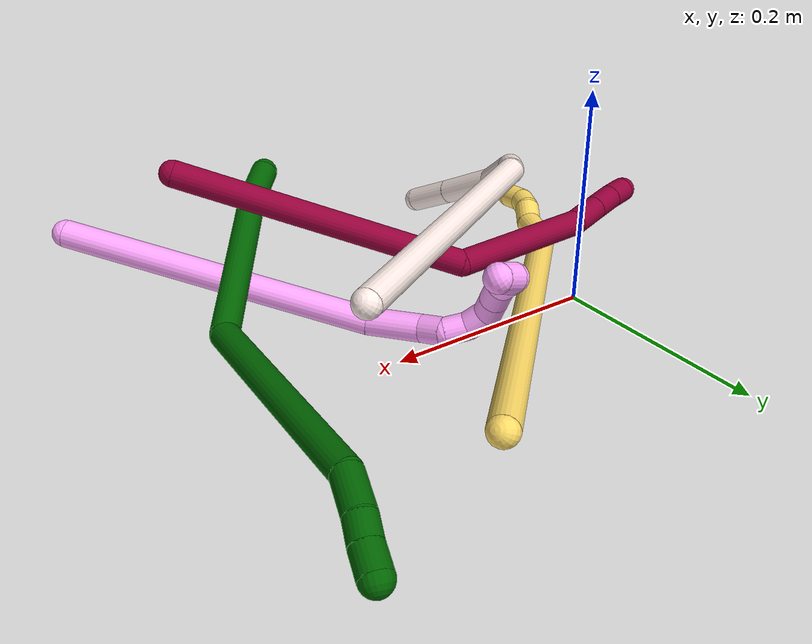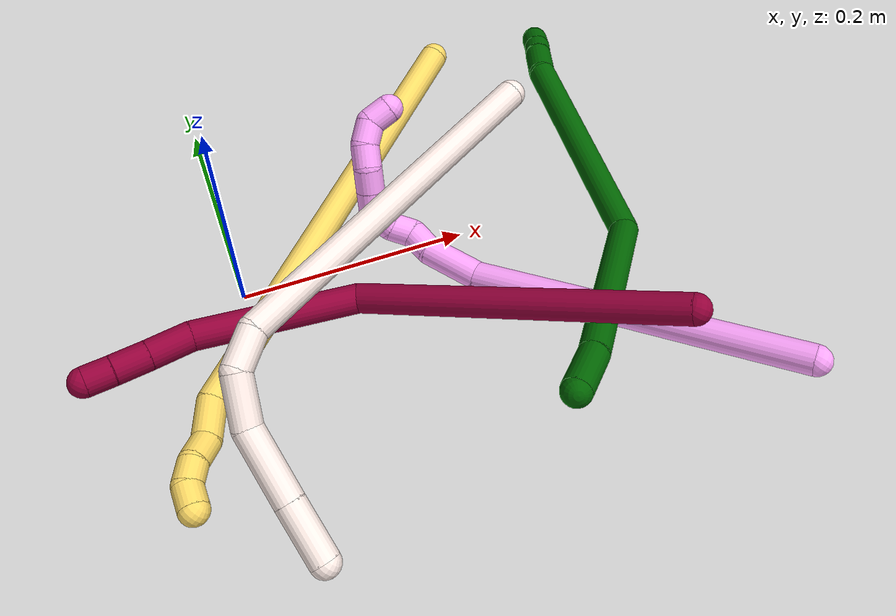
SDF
<sdf version="1.7">
 <world name="default">
  <model name="4">
   <static>0</static>
   <link name="4">
    <collision name="collision-cylinder-e_1_1_4">
     <pose>-0.039292 0.089827 -0.103903 -2.42873 -0.278635 0.720364</pose>
     <geometry><cylinder><radius>0.0125</radius><length>0.285717</length></cylinder></geometry>
     <surface>
      <friction><ode><mu>1.16</mu><mu2>1.16</mu2><slip1>0</slip1><slip2>0</slip2></ode></friction>
      <contact><ode><kp>1e+06</kp><kd>1</kd><max_vel>0</max_vel><min_depth>0.001</min_depth></ode></contact>
     </surface>
    </collision>
    <visual name="visual-cylinder-e_1_1_4">
     <pose>-0.039292 0.089827 -0.103903 -2.42873 -0.278635 0.720364</pose>
     <geometry><cylinder><radius>0.0125</radius><length>0.285717</length></cylinder></geometry>
     <material><ambient>1 0.65098 0.996078 1</ambient></material>
    </visual>
    <collision name="collision-cylinder-e_2_4_5">
     <pose>-0.087136 0.1897 -0.228833 -2.69589 -0.351705 1.32994</pose>
     <geometry><cylinder><radius>0.0125</radius><length>0.049647</length></cylinder></geometry>
     <surface>
      <friction><ode><mu>1.16</mu><mu2>1.16</mu2><slip1>0</slip1><slip2>0</slip2></ode></friction>
      <contact><ode><kp>1e+06</kp><kd>1</kd><max_vel>0</max_vel><min_depth>0.001</min_depth></ode></contact>
     </surface>
    </collision>
    <visual name="visual-cylinder-e_2_4_5">
     <pose>-0.087136 0.1897 -0.228833 -2.69589 -0.351705 1.32994</pose>
     <geometry><cylinder><radius>0.0125</radius><length>0.049647</length></cylinder></geometry>
     <material><ambient>1 0.65098 0.996078 1</ambient></material>
    </visual>
    <collision name="collision-cylinder-e_3_5_6">
     <pose>-0.101773 0.201737 -0.259047 -2.92811 -0.57452 2.44572</pose>
     <geometry><cylinder><radius>0.0125</radius><length>0.022395</length></cylinder></geometry>
     <surface>
      <friction><ode><mu>1.16</mu><mu2>1.16</mu2><slip1>0</slip1><slip2>0</slip2></ode></friction>
      <contact><ode><kp>1e+06</kp><kd>1</kd><max_vel>0</max_vel><min_depth>0.001</min_depth></ode></contact>
     </surface>
    </collision>
    <visual name="visual-cylinder-e_3_5_6">
     <pose>-0.101773 0.201737 -0.259047 -2.92811 -0.57452 2.44572</pose>
     <geometry><cylinder><radius>0.0125</radius><length>0.022395</length></cylinder></geometry>
     <material><ambient>1 0.65098 0.996078 1</ambient></material>
    </visual>
    <collision name="collision-cylinder-e_4_6_7">
     <pose>-0.107384 0.206868 -0.277932 -2.8286 0.046531 -0.292845</pose>
     <geometry><cylinder><radius>0.0125</radius><length>0.020411</length></cylinder></geometry>
     <surface>
      <friction><ode><mu>1.16</mu><mu2>1.16</mu2><slip1>0</slip1><slip2>0</slip2></ode></friction>
      <contact><ode><kp>1e+06</kp><kd>1</kd><max_vel>0</max_vel><min_depth>0.001</min_depth></ode></contact>
     </surface>
    </collision>
    <visual name="visual-cylinder-e_4_6_7">
     <pose>-0.107384 0.206868 -0.277932 -2.8286 0.046531 -0.292845</pose>
     <geometry><cylinder><radius>0.0125</radius><length>0.020411</length></cylinder></geometry>
     <material><ambient>1 0.65098 0.996078 1</ambient></material>
    </visual>
    <collision name="collision-cylinder-e_5_7_8">
     <pose>-0.106985 0.208387 -0.297838 2.98424 -0.0074 -0.093798</pose>
     <geometry><cylinder><radius>0.0125</radius><length>0.020668</length></cylinder></geometry>
     <surface>
      <friction><ode><mu>1.16</mu><mu2>1.16</mu2><slip1>0</slip1><slip2>0</slip2></ode></friction>
      <contact><ode><kp>1e+06</kp><kd>1</kd><max_vel>0</max_vel><min_depth>0.001</min_depth></ode></contact>
     </surface>
    </collision>
    <visual name="visual-cylinder-e_5_7_8">
     <pose>-0.106985 0.208387 -0.297838 2.98424 -0.0074 -0.093798</pose>
     <geometry><cylinder><radius>0.0125</radius><length>0.020668</length></cylinder></geometry>
     <material><ambient>1 0.65098 0.996078 1</ambient></material>
    </visual>
    <collision name="collision-cylinder-e_6_8_9">
     <pose>-0.109852 0.199547 -0.314644 2.31131 -0.277835 -0.614364</pose>
     <geometry><cylinder><radius>0.0125</radius><length>0.020347</length></cylinder></geometry>
     <surface>
      <friction><ode><mu>1.16</mu><mu2>1.16</mu2><slip1>0</slip1><slip2>0</slip2></ode></friction>
      <contact><ode><kp>1e+06</kp><kd>1</kd><max_vel>0</max_vel><min_depth>0.001</min_depth></ode></contact>
     </surface>
    </collision>
    <visual name="visual-cylinder-e_6_8_9">
     <pose>-0.109852 0.199547 -0.314644 2.31131 -0.277835 -0.614364</pose>
     <geometry><cylinder><radius>0.0125</radius><length>0.020347</length></cylinder></geometry>
     <material><ambient>1 0.65098 0.996078 1</ambient></material>
    </visual>
    <collision name="collision-cylinder-e_7_9_10">
     <pose>-0.115568 0.185071 -0.327884 2.31197 -0.289154 -0.638614</pose>
     <geometry><cylinder><radius>0.0125</radius><length>0.02052</length></cylinder></geometry>
     <surface>
      <friction><ode><mu>1.16</mu><mu2>1.16</mu2><slip1>0</slip1><slip2>0</slip2></ode></friction>
      <contact><ode><kp>1e+06</kp><kd>1</kd><max_vel>0</max_vel><min_depth>0.001</min_depth></ode></contact>
     </surface>
    </collision>
    <visual name="visual-cylinder-e_7_9_10">
     <pose>-0.115568 0.185071 -0.327884 2.31197 -0.289154 -0.638614</pose>
     <geometry><cylinder><radius>0.0125</radius><length>0.02052</length></cylinder></geometry>
     <material><ambient>1 0.65098 0.996078 1</ambient></material>
    </visual>
    <collision name="collision-cylinder-e_8_10_11">
     <pose>-0.124232 0.172583 -0.340835 2.44921 -0.610628 -1.43621</pose>
     <geometry><cylinder><radius>0.0125</radius><length>0.020016</length></cylinder></geometry>
     <surface>
      <friction><ode><mu>1.16</mu><mu2>1.16</mu2><slip1>0</slip1><slip2>0</slip2></ode></friction>
      <contact><ode><kp>1e+06</kp><kd>1</kd><max_vel>0</max_vel><min_depth>0.001</min_depth></ode></contact>
     </surface>
    </collision>
    <visual name="visual-cylinder-e_8_10_11">
     <pose>-0.124232 0.172583 -0.340835 2.44921 -0.610628 -1.43621</pose>
     <geometry><cylinder><radius>0.0125</radius><length>0.020016</length></cylinder></geometry>
     <material><ambient>1 0.65098 0.996078 1</ambient></material>
    </visual>
    <collision name="collision-cylinder-e_9_11_12">
     <pose>-0.137455 0.161204 -0.350134 2.02339 -0.830921 -1.22819</pose>
     <geometry><cylinder><radius>0.0125</radius><length>0.020267</length></cylinder></geometry>
     <surface>
      <friction><ode><mu>1.16</mu><mu2>1.16</mu2><slip1>0</slip1><slip2>0</slip2></ode></friction>
      <contact><ode><kp>1e+06</kp><kd>1</kd><max_vel>0</max_vel><min_depth>0.001</min_depth></ode></contact>
     </surface>
    </collision>
    <visual name="visual-cylinder-e_9_11_12">
     <pose>-0.137455 0.161204 -0.350134 2.02339 -0.830921 -1.22819</pose>
     <geometry><cylinder><radius>0.0125</radius><length>0.020267</length></cylinder></geometry>
     <material><ambient>1 0.65098 0.996078 1</ambient></material>
    </visual>
    <collision name="collision-cylinder-e_10_12_2">
     <pose>-0.150813 0.147738 -0.349657 1.12888 -0.627451 -0.405205</pose>
     <geometry><cylinder><radius>0.0125</radius><length>0.020012</length></cylinder></geometry>
     <surface>
      <friction><ode><mu>1.16</mu><mu2>1.16</mu2><slip1>0</slip1><slip2>0</slip2></ode></friction>
      <contact><ode><kp>1e+06</kp><kd>1</kd><max_vel>0</max_vel><min_depth>0.001</min_depth></ode></contact>
     </surface>
    </collision>
    <visual name="visual-cylinder-e_10_12_2">
     <pose>-0.150813 0.147738 -0.349657 1.12888 -0.627451 -0.405205</pose>
     <geometry><cylinder><radius>0.0125</radius><length>0.020012</length></cylinder></geometry>
     <material><ambient>1 0.65098 0.996078 1</ambient></material>
    </visual>
    <collision name="collision-sphere-2">
     <pose>-0.156688 0.140416 -0.346193 0 -0 0</pose>
     <geometry><sphere><radius>0.0125</radius></sphere></geometry>
     <surface>
      <friction><ode><mu>1.16</mu><mu2>1.16</mu2><slip1>0</slip1><slip2>0</slip2></ode></friction>
      <contact><ode><kp>1e+06</kp><kd>1</kd><max_vel>0</max_vel><min_depth>0.001</min_depth></ode></contact>
     </surface>
    </collision>
    <visual name="visual-sphere-2">
     <pose>-0.156688 0.140416 -0.346193 0 -0 0</pose>
     <geometry><sphere><radius>0.0125</radius></sphere></geometry>
     <material><ambient>1 0.65098 0.996078 1</ambient></material>
    </visual>
    <collision name="collision-sphere-12">
     <pose>-0.144939 0.15506 -0.353122 0 -0 0</pose>
     <geometry><sphere><radius>0.0125</radius></sphere></geometry>
     <surface>
      <friction><ode><mu>1.16</mu><mu2>1.16</mu2><slip1>0</slip1><slip2>0</slip2></ode></friction>
      <contact><ode><kp>1e+06</kp><kd>1</kd><max_vel>0</max_vel><min_depth>0.001</min_depth></ode></contact>
     </surface>
    </collision>
    <visual name="visual-sphere-12">
     <pose>-0.144939 0.15506 -0.353122 0 -0 0</pose>
     <geometry><sphere><radius>0.0125</radius></sphere></geometry>
     <material><ambient>1 0.65098 0.996078 1</ambient></material>
    </visual>
    <collision name="collision-sphere-11">
     <pose>-0.129971 0.167348 -0.347146 0 -0 0</pose>
     <geometry><sphere><radius>0.0125</radius></sphere></geometry>
     <surface>
      <friction><ode><mu>1.16</mu><mu2>1.16</mu2><slip1>0</slip1><slip2>0</slip2></ode></friction>
      <contact><ode><kp>1e+06</kp><kd>1</kd><max_vel>0</max_vel><min_depth>0.001</min_depth></ode></contact>
     </surface>
    </collision>
    <visual name="visual-sphere-11">
     <pose>-0.129971 0.167348 -0.347146 0 -0 0</pose>
     <geometry><sphere><radius>0.0125</radius></sphere></geometry>
     <material><ambient>1 0.65098 0.996078 1</ambient></material>
    </visual>
    <collision name="collision-sphere-10">
     <pose>-0.118494 0.177817 -0.334524 0 -0 0</pose>
     <geometry><sphere><radius>0.0125</radius></sphere></geometry>
     <surface>
      <friction><ode><mu>1.16</mu><mu2>1.16</mu2><slip1>0</slip1><slip2>0</slip2></ode></friction>
      <contact><ode><kp>1e+06</kp><kd>1</kd><max_vel>0</max_vel><min_depth>0.001</min_depth></ode></contact>
     </surface>
    </collision>
    <visual name="visual-sphere-10">
     <pose>-0.118494 0.177817 -0.334524 0 -0 0</pose>
     <geometry><sphere><radius>0.0125</radius></sphere></geometry>
     <material><ambient>1 0.65098 0.996078 1</ambient></material>
    </visual>
    <collision name="collision-sphere-9">
     <pose>-0.112643 0.192326 -0.321245 0 -0 0</pose>
     <geometry><sphere><radius>0.0125</radius></sphere></geometry>
     <surface>
      <friction><ode><mu>1.16</mu><mu2>1.16</mu2><slip1>0</slip1><slip2>0</slip2></ode></friction>
      <contact><ode><kp>1e+06</kp><kd>1</kd><max_vel>0</max_vel><min_depth>0.001</min_depth></ode></contact>
     </surface>
    </collision>
    <visual name="visual-sphere-9">
     <pose>-0.112643 0.192326 -0.321245 0 -0 0</pose>
     <geometry><sphere><radius>0.0125</radius></sphere></geometry>
     <material><ambient>1 0.65098 0.996078 1</ambient></material>
    </visual>
    <collision name="collision-sphere-4">
     <pose>-0.078585 0.179654 -0.207806 0 -0 0</pose>
     <geometry><sphere><radius>0.0125</radius></sphere></geometry>
     <surface>
      <friction><ode><mu>1.16</mu><mu2>1.16</mu2><slip1>0</slip1><slip2>0</slip2></ode></friction>
      <contact><ode><kp>1e+06</kp><kd>1</kd><max_vel>0</max_vel><min_depth>0.001</min_depth></ode></contact>
     </surface>
    </collision>
    <visual name="visual-sphere-4">
     <pose>-0.078585 0.179654 -0.207806 0 -0 0</pose>
     <geometry><sphere><radius>0.0125</radius></sphere></geometry>
     <material><ambient>1 0.65098 0.996078 1</ambient></material>
    </visual>
    <collision name="collision-sphere-1">
     <geometry><sphere><radius>0.0125</radius></sphere></geometry>
     <surface>
      <friction><ode><mu>1.16</mu><mu2>1.16</mu2><slip1>0</slip1><slip2>0</slip2></ode></friction>
      <contact><ode><kp>1e+06</kp><kd>1</kd><max_vel>0</max_vel><min_depth>0.001</min_depth></ode></contact>
     </surface>
    </collision>
    <visual name="visual-sphere-1">
     <geometry><sphere><radius>0.0125</radius></sphere></geometry>
     <material><ambient>1 0.65098 0.996078 1</ambient></material>
    </visual>
    <collision name="collision-sphere-8">
     <pose>-0.107062 0.206768 -0.308043 0 -0 0</pose>
     <geometry><sphere><radius>0.0125</radius></sphere></geometry>
     <surface>
      <friction><ode><mu>1.16</mu><mu2>1.16</mu2><slip1>0</slip1><slip2>0</slip2></ode></friction>
      <contact><ode><kp>1e+06</kp><kd>1</kd><max_vel>0</max_vel><min_depth>0.001</min_depth></ode></contact>
     </surface>
    </collision>
    <visual name="visual-sphere-8">
     <pose>-0.107062 0.206768 -0.308043 0 -0 0</pose>
     <geometry><sphere><radius>0.0125</radius></sphere></geometry>
     <material><ambient>1 0.65098 0.996078 1</ambient></material>
    </visual>
    <collision name="collision-sphere-5">
     <pose>-0.095688 0.199746 -0.24986 0 -0 0</pose>
     <geometry><sphere><radius>0.0125</radius></sphere></geometry>
     <surface>
      <friction><ode><mu>1.16</mu><mu2>1.16</mu2><slip1>0</slip1><slip2>0</slip2></ode></friction>
      <contact><ode><kp>1e+06</kp><kd>1</kd><max_vel>0</max_vel><min_depth>0.001</min_depth></ode></contact>
     </surface>
    </collision>
    <visual name="visual-sphere-5">
     <pose>-0.095688 0.199746 -0.24986 0 -0 0</pose>
     <geometry><sphere><radius>0.0125</radius></sphere></geometry>
     <material><ambient>1 0.65098 0.996078 1</ambient></material>
    </visual>
    <collision name="collision-sphere-6">
     <pose>-0.107858 0.203729 -0.268233 0 -0 0</pose>
     <geometry><sphere><radius>0.0125</radius></sphere></geometry>
     <surface>
      <friction><ode><mu>1.16</mu><mu2>1.16</mu2><slip1>0</slip1><slip2>0</slip2></ode></friction>
      <contact><ode><kp>1e+06</kp><kd>1</kd><max_vel>0</max_vel><min_depth>0.001</min_depth></ode></contact>
     </surface>
    </collision>
    <visual name="visual-sphere-6">
     <pose>-0.107858 0.203729 -0.268233 0 -0 0</pose>
     <geometry><sphere><radius>0.0125</radius></sphere></geometry>
     <material><ambient>1 0.65098 0.996078 1</ambient></material>
    </visual>
    <collision name="collision-sphere-7">
     <pose>-0.106909 0.210007 -0.287632 0 -0 0</pose>
     <geometry><sphere><radius>0.0125</radius></sphere></geometry>
     <surface>
      <friction><ode><mu>1.16</mu><mu2>1.16</mu2><slip1>0</slip1><slip2>0</slip2></ode></friction>
      <contact><ode><kp>1e+06</kp><kd>1</kd><max_vel>0</max_vel><min_depth>0.001</min_depth></ode></contact>
     </surface>
    </collision>
    <visual name="visual-sphere-7">
     <pose>-0.106909 0.210007 -0.287632 0 -0 0</pose>
     <geometry><sphere><radius>0.0125</radius></sphere></geometry>
     <material><ambient>1 0.65098 0.996078 1</ambient></material>
    </visual>
    <inertial>
     <pose>-0.070264 0.131332 -0.185447 0 -0 0</pose>
     <mass>0.5</mass>
     <inertia>
      <ixx>0.002656</ixx>
      <ixy>0</ixy>
      <ixz>0</ixz>
      <iyy>0.000377</iyy>
      <iyz>0</iyz>
      <izz>-0.00071</izz>
     </inertia>
    </inertial>
   </link>
   <pose>0.388501 -0.257989 0.070792 -2.11654 -0.183967 -2.12637</pose>
  </model>
  <model name="5">
   <static>0</static>
   <link name="5">
    <collision name="collision-cylinder-e_1_1_4">
     <pose>-0.081653 -0.089003 0.159469 0.509059 -0.420444 -0.110914</pose>
     <geometry><cylinder><radius>0.0125</radius><length>0.400095</length></cylinder></geometry>
     <surface>
      <friction><ode><mu>1.16</mu><mu2>1.16</mu2><slip1>0</slip1><slip2>0</slip2></ode></friction>
      <contact><ode><kp>1e+06</kp><kd>1</kd><max_vel>0</max_vel><min_depth>0.001</min_depth></ode></contact>
     </surface>
    </collision>
    <visual name="visual-cylinder-e_1_1_4">
     <pose>-0.081653 -0.089003 0.159469 0.509059 -0.420444 -0.110914</pose>
     <geometry><cylinder><radius>0.0125</radius><length>0.400095</length></cylinder></geometry>
     <material><ambient>1 0.858824 0.4 1</ambient></material>
    </visual>
    <collision name="collision-cylinder-e_2_4_5">
     <pose>-0.177227 -0.186308 0.327091 0.794447 -0.874616 -0.387335</pose>
     <geometry><cylinder><radius>0.0125</radius><length>0.036288</length></cylinder></geometry>
     <surface>
      <friction><ode><mu>1.16</mu><mu2>1.16</mu2><slip1>0</slip1><slip2>0</slip2></ode></friction>
      <contact><ode><kp>1e+06</kp><kd>1</kd><max_vel>0</max_vel><min_depth>0.001</min_depth></ode></contact>
     </surface>
    </collision>
    <visual name="visual-cylinder-e_2_4_5">
     <pose>-0.177227 -0.186308 0.327091 0.794447 -0.874616 -0.387335</pose>
     <geometry><cylinder><radius>0.0125</radius><length>0.036288</length></cylinder></geometry>
     <material><ambient>1 0.858824 0.4 1</ambient></material>
    </visual>
    <collision name="collision-cylinder-e_3_5_6">
     <pose>-0.197123 -0.203289 0.340389 1.03561 -0.534603 -0.309508</pose>
     <geometry><cylinder><radius>0.0125</radius><length>0.023453</length></cylinder></geometry>
     <surface>
      <friction><ode><mu>1.16</mu><mu2>1.16</mu2><slip1>0</slip1><slip2>0</slip2></ode></friction>
      <contact><ode><kp>1e+06</kp><kd>1</kd><max_vel>0</max_vel><min_depth>0.001</min_depth></ode></contact>
     </surface>
    </collision>
    <visual name="visual-cylinder-e_3_5_6">
     <pose>-0.197123 -0.203289 0.340389 1.03561 -0.534603 -0.309508</pose>
     <geometry><cylinder><radius>0.0125</radius><length>0.023453</length></cylinder></geometry>
     <material><ambient>1 0.858824 0.4 1</ambient></material>
    </visual>
    <collision name="collision-cylinder-e_4_6_7">
     <pose>-0.210102 -0.216818 0.350785 0.745785 -0.775313 -0.316787</pose>
     <geometry><cylinder><radius>0.0125</radius><length>0.020013</length></cylinder></geometry>
     <surface>
      <friction><ode><mu>1.16</mu><mu2>1.16</mu2><slip1>0</slip1><slip2>0</slip2></ode></friction>
      <contact><ode><kp>1e+06</kp><kd>1</kd><max_vel>0</max_vel><min_depth>0.001</min_depth></ode></contact>
     </surface>
    </collision>
    <visual name="visual-cylinder-e_4_6_7">
     <pose>-0.210102 -0.216818 0.350785 0.745785 -0.775313 -0.316787</pose>
     <geometry><cylinder><radius>0.0125</radius><length>0.020013</length></cylinder></geometry>
     <material><ambient>1 0.858824 0.4 1</ambient></material>
    </visual>
    <collision name="collision-cylinder-e_5_7_2">
     <pose>-0.226667 -0.2238 0.358392 0.735453 -1.2498 -0.542108</pose>
     <geometry><cylinder><radius>0.0125</radius><length>0.020151</length></cylinder></geometry>
     <surface>
      <friction><ode><mu>1.16</mu><mu2>1.16</mu2><slip1>0</slip1><slip2>0</slip2></ode></friction>
      <contact><ode><kp>1e+06</kp><kd>1</kd><max_vel>0</max_vel><min_depth>0.001</min_depth></ode></contact>
     </surface>
    </collision>
    <visual name="visual-cylinder-e_5_7_2">
     <pose>-0.226667 -0.2238 0.358392 0.735453 -1.2498 -0.542108</pose>
     <geometry><cylinder><radius>0.0125</radius><length>0.020151</length></cylinder></geometry>
     <material><ambient>1 0.858824 0.4 1</ambient></material>
    </visual>
    <collision name="collision-sphere-2">
     <pose>-0.236228 -0.225933 0.360749 0 -0 0</pose>
     <geometry><sphere><radius>0.0125</radius></sphere></geometry>
     <surface>
      <friction><ode><mu>1.16</mu><mu2>1.16</mu2><slip1>0</slip1><slip2>0</slip2></ode></friction>
      <contact><ode><kp>1e+06</kp><kd>1</kd><max_vel>0</max_vel><min_depth>0.001</min_depth></ode></contact>
     </surface>
    </collision>
    <visual name="visual-sphere-2">
     <pose>-0.236228 -0.225933 0.360749 0 -0 0</pose>
     <geometry><sphere><radius>0.0125</radius></sphere></geometry>
     <material><ambient>1 0.858824 0.4 1</ambient></material>
    </visual>
    <collision name="collision-sphere-7">
     <pose>-0.217106 -0.221667 0.356035 0 -0 0</pose>
     <geometry><sphere><radius>0.0125</radius></sphere></geometry>
     <surface>
      <friction><ode><mu>1.16</mu><mu2>1.16</mu2><slip1>0</slip1><slip2>0</slip2></ode></friction>
      <contact><ode><kp>1e+06</kp><kd>1</kd><max_vel>0</max_vel><min_depth>0.001</min_depth></ode></contact>
     </surface>
    </collision>
    <visual name="visual-sphere-7">
     <pose>-0.217106 -0.221667 0.356035 0 -0 0</pose>
     <geometry><sphere><radius>0.0125</radius></sphere></geometry>
     <material><ambient>1 0.858824 0.4 1</ambient></material>
    </visual>
    <collision name="collision-sphere-6">
     <pose>-0.203098 -0.211969 0.345535 0 -0 0</pose>
     <geometry><sphere><radius>0.0125</radius></sphere></geometry>
     <surface>
      <friction><ode><mu>1.16</mu><mu2>1.16</mu2><slip1>0</slip1><slip2>0</slip2></ode></friction>
      <contact><ode><kp>1e+06</kp><kd>1</kd><max_vel>0</max_vel><min_depth>0.001</min_depth></ode></contact>
     </surface>
    </collision>
    <visual name="visual-sphere-6">
     <pose>-0.203098 -0.211969 0.345535 0 -0 0</pose>
     <geometry><sphere><radius>0.0125</radius></sphere></geometry>
     <material><ambient>1 0.858824 0.4 1</ambient></material>
    </visual>
    <collision name="collision-sphere-5">
     <pose>-0.191149 -0.19461 0.335243 0 -0 0</pose>
     <geometry><sphere><radius>0.0125</radius></sphere></geometry>
     <surface>
      <friction><ode><mu>1.16</mu><mu2>1.16</mu2><slip1>0</slip1><slip2>0</slip2></ode></friction>
      <contact><ode><kp>1e+06</kp><kd>1</kd><max_vel>0</max_vel><min_depth>0.001</min_depth></ode></contact>
     </surface>
    </collision>
    <visual name="visual-sphere-5">
     <pose>-0.191149 -0.19461 0.335243 0 -0 0</pose>
     <geometry><sphere><radius>0.0125</radius></sphere></geometry>
     <material><ambient>1 0.858824 0.4 1</ambient></material>
    </visual>
    <collision name="collision-sphere-1">
     <geometry><sphere><radius>0.0125</radius></sphere></geometry>
     <surface>
      <friction><ode><mu>1.16</mu><mu2>1.16</mu2><slip1>0</slip1><slip2>0</slip2></ode></friction>
      <contact><ode><kp>1e+06</kp><kd>1</kd><max_vel>0</max_vel><min_depth>0.001</min_depth></ode></contact>
     </surface>
    </collision>
    <visual name="visual-sphere-1">
     <geometry><sphere><radius>0.0125</radius></sphere></geometry>
     <material><ambient>1 0.858824 0.4 1</ambient></material>
    </visual>
    <collision name="collision-sphere-4">
     <pose>-0.163305 -0.178007 0.318938 0 -0 0</pose>
     <geometry><sphere><radius>0.0125</radius></sphere></geometry>
     <surface>
      <friction><ode><mu>1.16</mu><mu2>1.16</mu2><slip1>0</slip1><slip2>0</slip2></ode></friction>
      <contact><ode><kp>1e+06</kp><kd>1</kd><max_vel>0</max_vel><min_depth>0.001</min_depth></ode></contact>
     </surface>
    </collision>
    <visual name="visual-sphere-4">
     <pose>-0.163305 -0.178007 0.318938 0 -0 0</pose>
     <geometry><sphere><radius>0.0125</radius></sphere></geometry>
     <material><ambient>1 0.858824 0.4 1</ambient></material>
    </visual>
    <inertial>
     <pose>-0.104991 -0.111974 0.195795 0 -0 0</pose>
     <mass>0.5</mass>
     <inertia>
      <ixx>0.004301</ixx>
      <ixy>0</ixy>
      <ixz>0</ixz>
      <iyy>0.004211</iyy>
      <iyz>0</iyz>
      <izz>0.004607</izz>
     </inertia>
    </inertial>
   </link>
   <pose>0.238931 0.176891 0.051468 -2.14544 -0.099076 1.92181</pose>
  </model>
  <model name="6">
   <static>0</static>
   <link name="6">
    <collision name="collision-cylinder-e_1_1_4">
     <pose>0.006904 0.010385 -0.017858 -2.61486 0.322508 -1.08568</pose>
     <geometry><cylinder><radius>0.0125</radius><length>0.043563</length></cylinder></geometry>
     <surface>
      <friction><ode><mu>1.16</mu><mu2>1.16</mu2><slip1>0</slip1><slip2>0</slip2></ode></friction>
      <contact><ode><kp>1e+06</kp><kd>1</kd><max_vel>0</max_vel><min_depth>0.001</min_depth></ode></contact>
     </surface>
    </collision>
    <visual name="visual-cylinder-e_1_1_4">
     <pose>0.006904 0.010385 -0.017858 -2.61486 0.322508 -1.08568</pose>
     <geometry><cylinder><radius>0.0125</radius><length>0.043563</length></cylinder></geometry>
     <material><ambient>0 0.392157 0.003922 1</ambient></material>
    </visual>
    <collision name="collision-cylinder-e_2_4_5">
     <pose>0.030333 0.059476 -0.110314 -2.66297 0.194157 -0.759536</pose>
     <geometry><cylinder><radius>0.0125</radius><length>0.171301</length></cylinder></geometry>
     <surface>
      <friction><ode><mu>1.16</mu><mu2>1.16</mu2><slip1>0</slip1><slip2>0</slip2></ode></friction>
      <contact><ode><kp>1e+06</kp><kd>1</kd><max_vel>0</max_vel><min_depth>0.001</min_depth></ode></contact>
     </surface>
    </collision>
    <visual name="visual-cylinder-e_2_4_5">
     <pose>0.030333 0.059476 -0.110314 -2.66297 0.194157 -0.759536</pose>
     <geometry><cylinder><radius>0.0125</radius><length>0.171301</length></cylinder></geometry>
     <material><ambient>0 0.392157 0.003922 1</ambient></material>
    </visual>
    <collision name="collision-cylinder-e_3_5_6">
     <pose>0.005182 0.157272 -0.258669 -2.46614 -0.415323 1.0808</pose>
     <geometry><cylinder><radius>0.0125</radius><length>0.206579</length></cylinder></geometry>
     <surface>
      <friction><ode><mu>1.16</mu><mu2>1.16</mu2><slip1>0</slip1><slip2>0</slip2></ode></friction>
      <contact><ode><kp>1e+06</kp><kd>1</kd><max_vel>0</max_vel><min_depth>0.001</min_depth></ode></contact>
     </surface>
    </collision>
    <visual name="visual-cylinder-e_3_5_6">
     <pose>0.005182 0.157272 -0.258669 -2.46614 -0.415323 1.0808</pose>
     <geometry><cylinder><radius>0.0125</radius><length>0.206579</length></cylinder></geometry>
     <material><ambient>0 0.392157 0.003922 1</ambient></material>
    </visual>
    <collision name="collision-cylinder-e_4_6_7">
     <pose>-0.038602 0.224918 -0.347981 -2.63882 -0.118199 0.452873</pose>
     <geometry><cylinder><radius>0.0125</radius><length>0.035754</length></cylinder></geometry>
     <surface>
      <friction><ode><mu>1.16</mu><mu2>1.16</mu2><slip1>0</slip1><slip2>0</slip2></ode></friction>
      <contact><ode><kp>1e+06</kp><kd>1</kd><max_vel>0</max_vel><min_depth>0.001</min_depth></ode></contact>
     </surface>
    </collision>
    <visual name="visual-cylinder-e_4_6_7">
     <pose>-0.038602 0.224918 -0.347981 -2.63882 -0.118199 0.452873</pose>
     <geometry><cylinder><radius>0.0125</radius><length>0.035754</length></cylinder></geometry>
     <material><ambient>0 0.392157 0.003922 1</ambient></material>
    </visual>
    <collision name="collision-cylinder-e_5_7_8">
     <pose>-0.041035 0.237288 -0.373018 -2.7589 -0.031781 0.163709</pose>
     <geometry><cylinder><radius>0.0125</radius><length>0.020452</length></cylinder></geometry>
     <surface>
      <friction><ode><mu>1.16</mu><mu2>1.16</mu2><slip1>0</slip1><slip2>0</slip2></ode></friction>
      <contact><ode><kp>1e+06</kp><kd>1</kd><max_vel>0</max_vel><min_depth>0.001</min_depth></ode></contact>
     </surface>
    </collision>
    <visual name="visual-cylinder-e_5_7_8">
     <pose>-0.041035 0.237288 -0.373018 -2.7589 -0.031781 0.163709</pose>
     <geometry><cylinder><radius>0.0125</radius><length>0.020452</length></cylinder></geometry>
     <material><ambient>0 0.392157 0.003922 1</ambient></material>
    </visual>
    <collision name="collision-cylinder-e_6_8_2">
     <pose>-0.04259 0.245174 -0.392835 -2.76652 -0.110296 0.566181</pose>
     <geometry><cylinder><radius>0.0125</radius><length>0.022352</length></cylinder></geometry>
     <surface>
      <friction><ode><mu>1.16</mu><mu2>1.16</mu2><slip1>0</slip1><slip2>0</slip2></ode></friction>
      <contact><ode><kp>1e+06</kp><kd>1</kd><max_vel>0</max_vel><min_depth>0.001</min_depth></ode></contact>
     </surface>
    </collision>
    <visual name="visual-cylinder-e_6_8_2">
     <pose>-0.04259 0.245174 -0.392835 -2.76652 -0.110296 0.566181</pose>
     <geometry><cylinder><radius>0.0125</radius><length>0.022352</length></cylinder></geometry>
     <material><ambient>0 0.392157 0.003922 1</ambient></material>
    </visual>
    <collision name="collision-sphere-2">
     <pose>-0.04382 0.249244 -0.40317 0 -0 0</pose>
     <geometry><sphere><radius>0.0125</radius></sphere></geometry>
     <surface>
      <friction><ode><mu>1.16</mu><mu2>1.16</mu2><slip1>0</slip1><slip2>0</slip2></ode></friction>
      <contact><ode><kp>1e+06</kp><kd>1</kd><max_vel>0</max_vel><min_depth>0.001</min_depth></ode></contact>
     </surface>
    </collision>
    <visual name="visual-sphere-2">
     <pose>-0.04382 0.249244 -0.40317 0 -0 0</pose>
     <geometry><sphere><radius>0.0125</radius></sphere></geometry>
     <material><ambient>0 0.392157 0.003922 1</ambient></material>
    </visual>
    <collision name="collision-sphere-4">
     <pose>0.013807 0.020771 -0.035717 0 -0 0</pose>
     <geometry><sphere><radius>0.0125</radius></sphere></geometry>
     <surface>
      <friction><ode><mu>1.16</mu><mu2>1.16</mu2><slip1>0</slip1><slip2>0</slip2></ode></friction>
      <contact><ode><kp>1e+06</kp><kd>1</kd><max_vel>0</max_vel><min_depth>0.001</min_depth></ode></contact>
     </surface>
    </collision>
    <visual name="visual-sphere-4">
     <pose>0.013807 0.020771 -0.035717 0 -0 0</pose>
     <geometry><sphere><radius>0.0125</radius></sphere></geometry>
     <material><ambient>0 0.392157 0.003922 1</ambient></material>
    </visual>
    <collision name="collision-sphere-1">
     <geometry><sphere><radius>0.0125</radius></sphere></geometry>
     <surface>
      <friction><ode><mu>1.16</mu><mu2>1.16</mu2><slip1>0</slip1><slip2>0</slip2></ode></friction>
      <contact><ode><kp>1e+06</kp><kd>1</kd><max_vel>0</max_vel><min_depth>0.001</min_depth></ode></contact>
     </surface>
    </collision>
    <visual name="visual-sphere-1">
     <geometry><sphere><radius>0.0125</radius></sphere></geometry>
     <material><ambient>0 0.392157 0.003922 1</ambient></material>
    </visual>
    <collision name="collision-sphere-8">
     <pose>-0.04136 0.241105 -0.382499 0 -0 0</pose>
     <geometry><sphere><radius>0.0125</radius></sphere></geometry>
     <surface>
      <friction><ode><mu>1.16</mu><mu2>1.16</mu2><slip1>0</slip1><slip2>0</slip2></ode></friction>
      <contact><ode><kp>1e+06</kp><kd>1</kd><max_vel>0</max_vel><min_depth>0.001</min_depth></ode></contact>
     </surface>
    </collision>
    <visual name="visual-sphere-8">
     <pose>-0.04136 0.241105 -0.382499 0 -0 0</pose>
     <geometry><sphere><radius>0.0125</radius></sphere></geometry>
     <material><ambient>0 0.392157 0.003922 1</ambient></material>
    </visual>
    <collision name="collision-sphere-5">
     <pose>0.046858 0.098181 -0.184912 0 -0 0</pose>
     <geometry><sphere><radius>0.0125</radius></sphere></geometry>
     <surface>
      <friction><ode><mu>1.16</mu><mu2>1.16</mu2><slip1>0</slip1><slip2>0</slip2></ode></friction>
      <contact><ode><kp>1e+06</kp><kd>1</kd><max_vel>0</max_vel><min_depth>0.001</min_depth></ode></contact>
     </surface>
    </collision>
    <visual name="visual-sphere-5">
     <pose>0.046858 0.098181 -0.184912 0 -0 0</pose>
     <geometry><sphere><radius>0.0125</radius></sphere></geometry>
     <material><ambient>0 0.392157 0.003922 1</ambient></material>
    </visual>
    <collision name="collision-sphere-6">
     <pose>-0.036494 0.216364 -0.332425 0 -0 0</pose>
     <geometry><sphere><radius>0.0125</radius></sphere></geometry>
     <surface>
      <friction><ode><mu>1.16</mu><mu2>1.16</mu2><slip1>0</slip1><slip2>0</slip2></ode></friction>
      <contact><ode><kp>1e+06</kp><kd>1</kd><max_vel>0</max_vel><min_depth>0.001</min_depth></ode></contact>
     </surface>
    </collision>
    <visual name="visual-sphere-6">
     <pose>-0.036494 0.216364 -0.332425 0 -0 0</pose>
     <geometry><sphere><radius>0.0125</radius></sphere></geometry>
     <material><ambient>0 0.392157 0.003922 1</ambient></material>
    </visual>
    <collision name="collision-sphere-7">
     <pose>-0.04071 0.233472 -0.363536 0 -0 0</pose>
     <geometry><sphere><radius>0.0125</radius></sphere></geometry>
     <surface>
      <friction><ode><mu>1.16</mu><mu2>1.16</mu2><slip1>0</slip1><slip2>0</slip2></ode></friction>
      <contact><ode><kp>1e+06</kp><kd>1</kd><max_vel>0</max_vel><min_depth>0.001</min_depth></ode></contact>
     </surface>
    </collision>
    <visual name="visual-sphere-7">
     <pose>-0.04071 0.233472 -0.363536 0 -0 0</pose>
     <geometry><sphere><radius>0.0125</radius></sphere></geometry>
     <material><ambient>0 0.392157 0.003922 1</ambient></material>
    </visual>
    <inertial>
     <pose>0.006792 0.123009 -0.203923 0 -0 0</pose>
     <mass>0.5</mass>
     <inertia>
      <ixx>0.000939</ixx>
      <ixy>0</ixy>
      <ixz>0</ixz>
      <iyy>-3.7e-05</iyy>
      <iyz>0</iyz>
      <izz>-0.000441</izz>
     </inertia>
    </inertial>
   </link>
   <pose>0.199524 -0.232652 0.097084 0.816525 0.174519 -0.479368</pose>
  </model>
  <model name="8">
   <static>0</static>
   <link name="8">
    <collision name="collision-cylinder-e_1_1_4">
     <pose>-0.106014 -0.001235 -0.087649 3.12751 -0.879897 -3.11167</pose>
     <geometry><cylinder><radius>0.0125</radius><length>0.27512</length></cylinder></geometry>
     <surface>
      <friction><ode><mu>1.16</mu><mu2>1.16</mu2><slip1>0</slip1><slip2>0</slip2></ode></friction>
      <contact><ode><kp>1e+06</kp><kd>1</kd><max_vel>0</max_vel><min_depth>0.001</min_depth></ode></contact>
     </surface>
    </collision>
    <visual name="visual-cylinder-e_1_1_4">
     <pose>-0.106014 -0.001235 -0.087649 3.12751 -0.879897 -3.11167</pose>
     <geometry><cylinder><radius>0.0125</radius><length>0.27512</length></cylinder></geometry>
     <material><ambient>0.584314 0 0.227451 1</ambient></material>
    </visual>
    <collision name="collision-cylinder-e_2_4_5">
     <pose>-0.233713 0.028995 -0.232206 -2.63653 -0.32189 1.12317</pose>
     <geometry><cylinder><radius>0.0125</radius><length>0.137096</length></cylinder></geometry>
     <surface>
      <friction><ode><mu>1.16</mu><mu2>1.16</mu2><slip1>0</slip1><slip2>0</slip2></ode></friction>
      <contact><ode><kp>1e+06</kp><kd>1</kd><max_vel>0</max_vel><min_depth>0.001</min_depth></ode></contact>
     </surface>
    </collision>
    <visual name="visual-cylinder-e_2_4_5">
     <pose>-0.233713 0.028995 -0.232206 -2.63653 -0.32189 1.12317</pose>
     <geometry><cylinder><radius>0.0125</radius><length>0.137096</length></cylinder></geometry>
     <material><ambient>0.584314 0 0.227451 1</ambient></material>
    </visual>
    <collision name="collision-cylinder-e_3_5_6">
     <pose>-0.258061 0.072668 -0.30248 -2.40137 -0.145996 0.372586</pose>
     <geometry><cylinder><radius>0.0125</radius><length>0.036594</length></cylinder></geometry>
     <surface>
      <friction><ode><mu>1.16</mu><mu2>1.16</mu2><slip1>0</slip1><slip2>0</slip2></ode></friction>
      <contact><ode><kp>1e+06</kp><kd>1</kd><max_vel>0</max_vel><min_depth>0.001</min_depth></ode></contact>
     </surface>
    </collision>
    <visual name="visual-cylinder-e_3_5_6">
     <pose>-0.258061 0.072668 -0.30248 -2.40137 -0.145996 0.372586</pose>
     <geometry><cylinder><radius>0.0125</radius><length>0.036594</length></cylinder></geometry>
     <material><ambient>0.584314 0 0.227451 1</ambient></material>
    </visual>
    <collision name="collision-cylinder-e_4_6_7">
     <pose>-0.262819 0.094275 -0.326591 -2.42301 -0.145812 0.384113</pose>
     <geometry><cylinder><radius>0.0125</radius><length>0.028857</length></cylinder></geometry>
     <surface>
      <friction><ode><mu>1.16</mu><mu2>1.16</mu2><slip1>0</slip1><slip2>0</slip2></ode></friction>
      <contact><ode><kp>1e+06</kp><kd>1</kd><max_vel>0</max_vel><min_depth>0.001</min_depth></ode></contact>
     </surface>
    </collision>
    <visual name="visual-cylinder-e_4_6_7">
     <pose>-0.262819 0.094275 -0.326591 -2.42301 -0.145812 0.384113</pose>
     <geometry><cylinder><radius>0.0125</radius><length>0.028857</length></cylinder></geometry>
     <material><ambient>0.584314 0 0.227451 1</ambient></material>
    </visual>
    <collision name="collision-cylinder-e_5_7_2">
     <pose>-0.267103 0.110648 -0.345777 -2.451 -0.197146 0.536596</pose>
     <geometry><cylinder><radius>0.0125</radius><length>0.022332</length></cylinder></geometry>
     <surface>
      <friction><ode><mu>1.16</mu><mu2>1.16</mu2><slip1>0</slip1><slip2>0</slip2></ode></friction>
      <contact><ode><kp>1e+06</kp><kd>1</kd><max_vel>0</max_vel><min_depth>0.001</min_depth></ode></contact>
     </surface>
    </collision>
    <visual name="visual-cylinder-e_5_7_2">
     <pose>-0.267103 0.110648 -0.345777 -2.451 -0.197146 0.536596</pose>
     <geometry><cylinder><radius>0.0125</radius><length>0.022332</length></cylinder></geometry>
     <material><ambient>0.584314 0 0.227451 1</ambient></material>
    </visual>
    <collision name="collision-sphere-2">
     <pose>-0.26929 0.117623 -0.354218 0 -0 0</pose>
     <geometry><sphere><radius>0.0125</radius></sphere></geometry>
     <surface>
      <friction><ode><mu>1.16</mu><mu2>1.16</mu2><slip1>0</slip1><slip2>0</slip2></ode></friction>
      <contact><ode><kp>1e+06</kp><kd>1</kd><max_vel>0</max_vel><min_depth>0.001</min_depth></ode></contact>
     </surface>
    </collision>
    <visual name="visual-sphere-2">
     <pose>-0.26929 0.117623 -0.354218 0 -0 0</pose>
     <geometry><sphere><radius>0.0125</radius></sphere></geometry>
     <material><ambient>0.584314 0 0.227451 1</ambient></material>
    </visual>
    <collision name="collision-sphere-7">
     <pose>-0.264916 0.103673 -0.337336 0 -0 0</pose>
     <geometry><sphere><radius>0.0125</radius></sphere></geometry>
     <surface>
      <friction><ode><mu>1.16</mu><mu2>1.16</mu2><slip1>0</slip1><slip2>0</slip2></ode></friction>
      <contact><ode><kp>1e+06</kp><kd>1</kd><max_vel>0</max_vel><min_depth>0.001</min_depth></ode></contact>
     </surface>
    </collision>
    <visual name="visual-sphere-7">
     <pose>-0.264916 0.103673 -0.337336 0 -0 0</pose>
     <geometry><sphere><radius>0.0125</radius></sphere></geometry>
     <material><ambient>0.584314 0 0.227451 1</ambient></material>
    </visual>
    <collision name="collision-sphere-6">
     <pose>-0.260723 0.084878 -0.315845 0 -0 0</pose>
     <geometry><sphere><radius>0.0125</radius></sphere></geometry>
     <surface>
      <friction><ode><mu>1.16</mu><mu2>1.16</mu2><slip1>0</slip1><slip2>0</slip2></ode></friction>
      <contact><ode><kp>1e+06</kp><kd>1</kd><max_vel>0</max_vel><min_depth>0.001</min_depth></ode></contact>
     </surface>
    </collision>
    <visual name="visual-sphere-6">
     <pose>-0.260723 0.084878 -0.315845 0 -0 0</pose>
     <geometry><sphere><radius>0.0125</radius></sphere></geometry>
     <material><ambient>0.584314 0 0.227451 1</ambient></material>
    </visual>
    <collision name="collision-sphere-5">
     <pose>-0.255399 0.060459 -0.289114 0 -0 0</pose>
     <geometry><sphere><radius>0.0125</radius></sphere></geometry>
     <surface>
      <friction><ode><mu>1.16</mu><mu2>1.16</mu2><slip1>0</slip1><slip2>0</slip2></ode></friction>
      <contact><ode><kp>1e+06</kp><kd>1</kd><max_vel>0</max_vel><min_depth>0.001</min_depth></ode></contact>
     </surface>
    </collision>
    <visual name="visual-sphere-5">
     <pose>-0.255399 0.060459 -0.289114 0 -0 0</pose>
     <geometry><sphere><radius>0.0125</radius></sphere></geometry>
     <material><ambient>0.584314 0 0.227451 1</ambient></material>
    </visual>
    <collision name="collision-sphere-1">
     <geometry><sphere><radius>0.0125</radius></sphere></geometry>
     <surface>
      <friction><ode><mu>1.16</mu><mu2>1.16</mu2><slip1>0</slip1><slip2>0</slip2></ode></friction>
      <contact><ode><kp>1e+06</kp><kd>1</kd><max_vel>0</max_vel><min_depth>0.001</min_depth></ode></contact>
     </surface>
    </collision>
    <visual name="visual-sphere-1">
     <geometry><sphere><radius>0.0125</radius></sphere></geometry>
     <material><ambient>0.584314 0 0.227451 1</ambient></material>
    </visual>
    <collision name="collision-sphere-4">
     <pose>-0.212028 -0.00247 -0.175298 0 -0 0</pose>
     <geometry><sphere><radius>0.0125</radius></sphere></geometry>
     <surface>
      <friction><ode><mu>1.16</mu><mu2>1.16</mu2><slip1>0</slip1><slip2>0</slip2></ode></friction>
      <contact><ode><kp>1e+06</kp><kd>1</kd><max_vel>0</max_vel><min_depth>0.001</min_depth></ode></contact>
     </surface>
    </collision>
    <visual name="visual-sphere-4">
     <pose>-0.212028 -0.00247 -0.175298 0 -0 0</pose>
     <geometry><sphere><radius>0.0125</radius></sphere></geometry>
     <material><ambient>0.584314 0 0.227451 1</ambient></material>
    </visual>
    <inertial>
     <pose>-0.168401 0.022972 -0.168328 0 -0 0</pose>
     <mass>0.5</mass>
     <inertia>
      <ixx>-0.000874</ixx>
      <ixy>0</ixy>
      <ixz>0</ixz>
      <iyy>0.001854</iyy>
      <iyz>0</iyz>
      <izz>0.001297</izz>
     </inertia>
    </inertial>
   </link>
   <pose>0.299132 -0.213634 0.122921 -2.74237 -0.983967 -0.880999</pose>
  </model>
  <model name="11">
   <static>0</static>
   <link name="11">
    <collision name="collision-cylinder-e_1_1_4">
     <pose>-0.08509 -0.045898 -0.122675 2.78358 -0.576122 -2.04513</pose>
     <geometry><cylinder><radius>0.0125</radius><length>0.312386</length></cylinder></geometry>
     <surface>
      <friction><ode><mu>1.16</mu><mu2>1.16</mu2><slip1>0</slip1><slip2>0</slip2></ode></friction>
      <contact><ode><kp>1e+06</kp><kd>1</kd><max_vel>0</max_vel><min_depth>0.001</min_depth></ode></contact>
     </surface>
    </collision>
    <visual name="visual-cylinder-e_1_1_4">
     <pose>-0.08509 -0.045898 -0.122675 2.78358 -0.576122 -2.04513</pose>
     <geometry><cylinder><radius>0.0125</radius><length>0.312386</length></cylinder></geometry>
     <material><ambient>1 0.933333 0.909804 1</ambient></material>
    </visual>
    <collision name="collision-cylinder-e_2_4_5">
     <pose>-0.174355 -0.101804 -0.258204 2.47999 -0.250878 -0.703814</pose>
     <geometry><cylinder><radius>0.0125</radius><length>0.033635</length></cylinder></geometry>
     <surface>
      <friction><ode><mu>1.16</mu><mu2>1.16</mu2><slip1>0</slip1><slip2>0</slip2></ode></friction>
      <contact><ode><kp>1e+06</kp><kd>1</kd><max_vel>0</max_vel><min_depth>0.001</min_depth></ode></contact>
     </surface>
    </collision>
    <visual name="visual-cylinder-e_2_4_5">
     <pose>-0.174355 -0.101804 -0.258204 2.47999 -0.250878 -0.703814</pose>
     <geometry><cylinder><radius>0.0125</radius><length>0.033635</length></cylinder></geometry>
     <material><ambient>1 0.933333 0.909804 1</ambient></material>
    </visual>
    <collision name="collision-cylinder-e_3_5_6">
     <pose>-0.170888 -0.12737 -0.283583 2.24865 0.365432 0.736744</pose>
     <geometry><cylinder><radius>0.0125</radius><length>0.042769</length></cylinder></geometry>
     <surface>
      <friction><ode><mu>1.16</mu><mu2>1.16</mu2><slip1>0</slip1><slip2>0</slip2></ode></friction>
      <contact><ode><kp>1e+06</kp><kd>1</kd><max_vel>0</max_vel><min_depth>0.001</min_depth></ode></contact>
     </surface>
    </collision>
    <visual name="visual-cylinder-e_3_5_6">
     <pose>-0.170888 -0.12737 -0.283583 2.24865 0.365432 0.736744</pose>
     <geometry><cylinder><radius>0.0125</radius><length>0.042769</length></cylinder></geometry>
     <material><ambient>1 0.933333 0.909804 1</ambient></material>
    </visual>
    <collision name="collision-cylinder-e_4_6_7">
     <pose>-0.151225 -0.170057 -0.303886 1.84997 0.402684 0.528983</pose>
     <geometry><cylinder><radius>0.0125</radius><length>0.061352</length></cylinder></geometry>
     <surface>
      <friction><ode><mu>1.16</mu><mu2>1.16</mu2><slip1>0</slip1><slip2>0</slip2></ode></friction>
      <contact><ode><kp>1e+06</kp><kd>1</kd><max_vel>0</max_vel><min_depth>0.001</min_depth></ode></contact>
     </surface>
    </collision>
    <visual name="visual-cylinder-e_4_6_7">
     <pose>-0.151225 -0.170057 -0.303886 1.84997 0.402684 0.528983</pose>
     <geometry><cylinder><radius>0.0125</radius><length>0.061352</length></cylinder></geometry>
     <material><ambient>1 0.933333 0.909804 1</ambient></material>
    </visual>
    <collision name="collision-cylinder-e_5_7_2">
     <pose>-0.129489 -0.219372 -0.317568 1.83093 0.400304 0.516088</pose>
     <geometry><cylinder><radius>0.0125</radius><length>0.049859</length></cylinder></geometry>
     <surface>
      <friction><ode><mu>1.16</mu><mu2>1.16</mu2><slip1>0</slip1><slip2>0</slip2></ode></friction>
      <contact><ode><kp>1e+06</kp><kd>1</kd><max_vel>0</max_vel><min_depth>0.001</min_depth></ode></contact>
     </surface>
    </collision>
    <visual name="visual-cylinder-e_5_7_2">
     <pose>-0.129489 -0.219372 -0.317568 1.83093 0.400304 0.516088</pose>
     <geometry><cylinder><radius>0.0125</radius><length>0.049859</length></cylinder></geometry>
     <material><ambient>1 0.933333 0.909804 1</ambient></material>
    </visual>
    <collision name="collision-sphere-2">
     <pose>-0.119774 -0.241558 -0.323473 0 -0 0</pose>
     <geometry><sphere><radius>0.0125</radius></sphere></geometry>
     <surface>
      <friction><ode><mu>1.16</mu><mu2>1.16</mu2><slip1>0</slip1><slip2>0</slip2></ode></friction>
      <contact><ode><kp>1e+06</kp><kd>1</kd><max_vel>0</max_vel><min_depth>0.001</min_depth></ode></contact>
     </surface>
    </collision>
    <visual name="visual-sphere-2">
     <pose>-0.119774 -0.241558 -0.323473 0 -0 0</pose>
     <geometry><sphere><radius>0.0125</radius></sphere></geometry>
     <material><ambient>1 0.933333 0.909804 1</ambient></material>
    </visual>
    <collision name="collision-sphere-7">
     <pose>-0.139203 -0.197186 -0.311662 0 -0 0</pose>
     <geometry><sphere><radius>0.0125</radius></sphere></geometry>
     <surface>
      <friction><ode><mu>1.16</mu><mu2>1.16</mu2><slip1>0</slip1><slip2>0</slip2></ode></friction>
      <contact><ode><kp>1e+06</kp><kd>1</kd><max_vel>0</max_vel><min_depth>0.001</min_depth></ode></contact>
     </surface>
    </collision>
    <visual name="visual-sphere-7">
     <pose>-0.139203 -0.197186 -0.311662 0 -0 0</pose>
     <geometry><sphere><radius>0.0125</radius></sphere></geometry>
     <material><ambient>1 0.933333 0.909804 1</ambient></material>
    </visual>
    <collision name="collision-sphere-6">
     <pose>-0.163247 -0.142927 -0.296109 0 -0 0</pose>
     <geometry><sphere><radius>0.0125</radius></sphere></geometry>
     <surface>
      <friction><ode><mu>1.16</mu><mu2>1.16</mu2><slip1>0</slip1><slip2>0</slip2></ode></friction>
      <contact><ode><kp>1e+06</kp><kd>1</kd><max_vel>0</max_vel><min_depth>0.001</min_depth></ode></contact>
     </surface>
    </collision>
    <visual name="visual-sphere-6">
     <pose>-0.163247 -0.142927 -0.296109 0 -0 0</pose>
     <geometry><sphere><radius>0.0125</radius></sphere></geometry>
     <material><ambient>1 0.933333 0.909804 1</ambient></material>
    </visual>
    <collision name="collision-sphere-5">
     <pose>-0.17853 -0.111813 -0.271058 0 -0 0</pose>
     <geometry><sphere><radius>0.0125</radius></sphere></geometry>
     <surface>
      <friction><ode><mu>1.16</mu><mu2>1.16</mu2><slip1>0</slip1><slip2>0</slip2></ode></friction>
      <contact><ode><kp>1e+06</kp><kd>1</kd><max_vel>0</max_vel><min_depth>0.001</min_depth></ode></contact>
     </surface>
    </collision>
    <visual name="visual-sphere-5">
     <pose>-0.17853 -0.111813 -0.271058 0 -0 0</pose>
     <geometry><sphere><radius>0.0125</radius></sphere></geometry>
     <material><ambient>1 0.933333 0.909804 1</ambient></material>
    </visual>
    <collision name="collision-sphere-1">
     <geometry><sphere><radius>0.0125</radius></sphere></geometry>
     <surface>
      <friction><ode><mu>1.16</mu><mu2>1.16</mu2><slip1>0</slip1><slip2>0</slip2></ode></friction>
      <contact><ode><kp>1e+06</kp><kd>1</kd><max_vel>0</max_vel><min_depth>0.001</min_depth></ode></contact>
     </surface>
    </collision>
    <visual name="visual-sphere-1">
     <geometry><sphere><radius>0.0125</radius></sphere></geometry>
     <material><ambient>1 0.933333 0.909804 1</ambient></material>
    </visual>
    <collision name="collision-sphere-4">
     <pose>-0.17018 -0.091795 -0.245351 0 -0 0</pose>
     <geometry><sphere><radius>0.0125</radius></sphere></geometry>
     <surface>
      <friction><ode><mu>1.16</mu><mu2>1.16</mu2><slip1>0</slip1><slip2>0</slip2></ode></friction>
      <contact><ode><kp>1e+06</kp><kd>1</kd><max_vel>0</max_vel><min_depth>0.001</min_depth></ode></contact>
     </surface>
    </collision>
    <visual name="visual-sphere-4">
     <pose>-0.17018 -0.091795 -0.245351 0 -0 0</pose>
     <geometry><sphere><radius>0.0125</radius></sphere></geometry>
     <material><ambient>1 0.933333 0.909804 1</ambient></material>
    </visual>
    <inertial>
     <pose>-0.110976 -0.089161 -0.187225 0 -0 0</pose>
     <mass>0.5</mass>
     <inertia>
      <ixx>-0.002837</ixx>
      <ixy>0</ixy>
      <ixz>0</ixz>
      <iyy>-0.000386</iyy>
      <iyz>0</iyz>
      <izz>0.002139</izz>
     </inertia>
    </inertial>
   </link>
   <pose>0.266988 0.055311 0.102204 -0.041193 0.934227 0.194976</pose>
  </model>
 </world>
</sdf>
